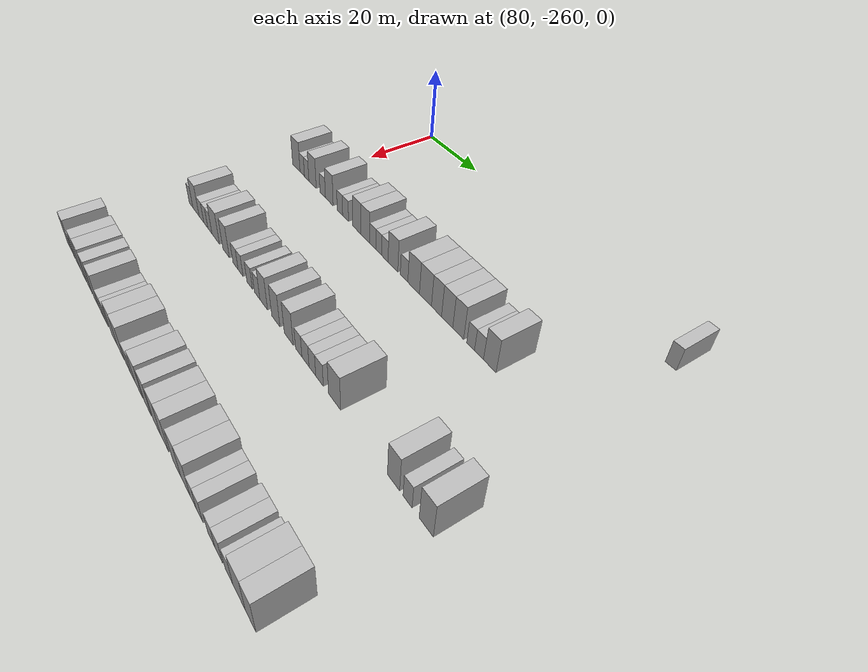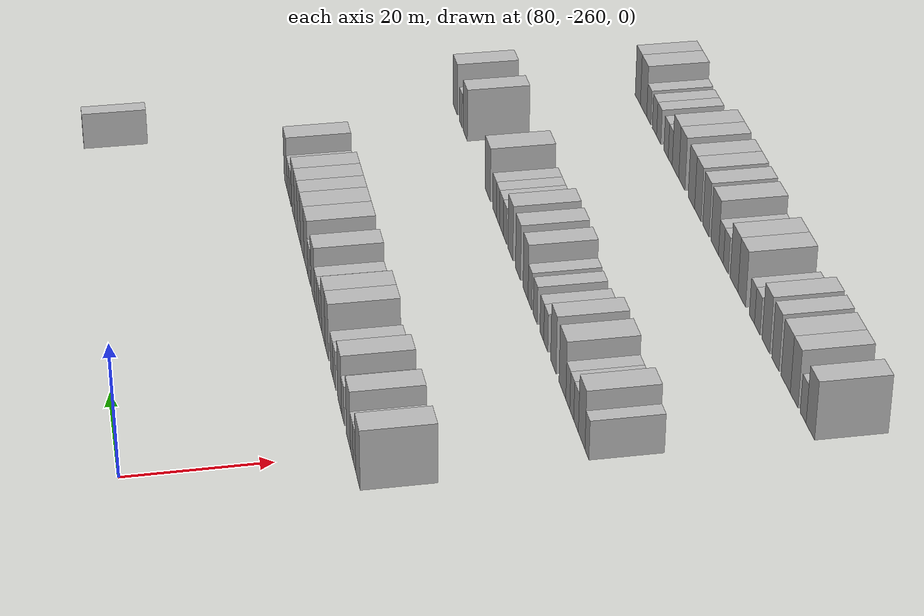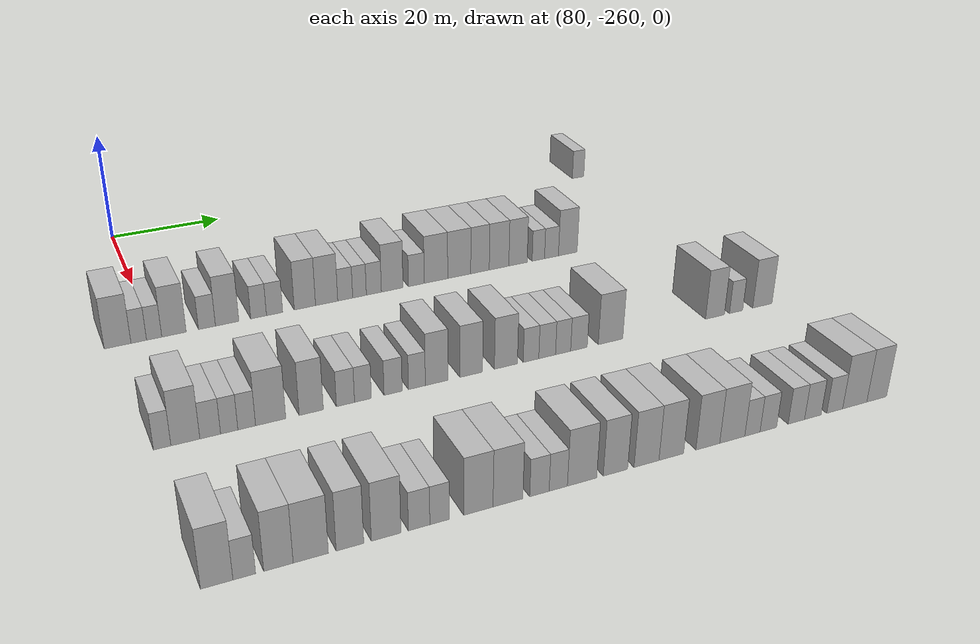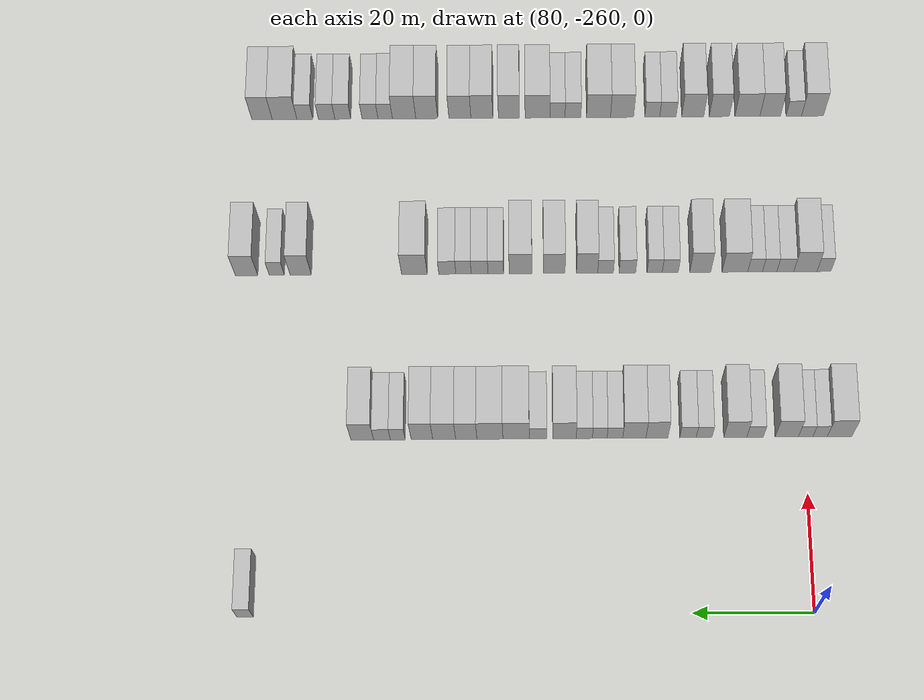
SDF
<sdf version="1.6">
 <world name="default">
  <model name="building_528">
   <static>1</static>
   <pose>85.0000 -166.7647 0 0.000000 0.000000 0.000000</pose>
   <link name="link">
    <pose>0 0 3.00 0 0 0</pose>
    <collision name="collision"><geometry><box><size>10.0000 2.6875 6.0000</size></box></geometry></collision>
    <visual name="visual">
     <cast_shadows>0</cast_shadows>
     <geometry><box><size>10.0000 2.6875 6.0000</size></box></geometry>
     <material>
      <script>
       <uri>model://HANNAS_wall/materials/scripts</uri>
       <uri>model://HANNAS_wall/materials/textures</uri>
       <name>vrc/HANNAS_wall</name>
      </script>
     </material>
    </visual>
   </link>
  </model>
  <model name="building_724">
   <static>1</static>
   <pose>115.0000 -265.9324 0 0.000000 0.000000 0.000000</pose>
   <link name="link">
    <pose>0 0 4.50 0 0 0</pose>
    <collision name="collision"><geometry><box><size>10.0000 4.1883 9.0000</size></box></geometry></collision>
    <visual name="visual">
     <cast_shadows>0</cast_shadows>
     <geometry><box><size>10.0000 4.1883 9.0000</size></box></geometry>
     <material>
      <script>
       <uri>model://HANNAS_wall/materials/scripts</uri>
       <uri>model://HANNAS_wall/materials/textures</uri>
       <name>vrc/HANNAS_wall</name>
      </script>
     </material>
    </visual>
   </link>
  </model>
  <model name="building_725">
   <static>1</static>
   <pose>115.0000 -262.6102 0 0.000000 0.000000 0.000000</pose>
   <link name="link">
    <pose>0 0 3.00 0 0 0</pose>
    <collision name="collision"><geometry><box><size>10.0000 2.4560 6.0000</size></box></geometry></collision>
    <visual name="visual">
     <cast_shadows>0</cast_shadows>
     <geometry><box><size>10.0000 2.4560 6.0000</size></box></geometry>
     <material>
      <script>
       <uri>model://HANNAS_wall/materials/scripts</uri>
       <uri>model://HANNAS_wall/materials/textures</uri>
       <name>vrc/HANNAS_wall</name>
      </script>
     </material>
    </visual>
   </link>
  </model>
  <model name="building_726">
   <static>1</static>
   <pose>115.0000 -260.1638 0 0.000000 0.000000 0.000000</pose>
   <link name="link">
    <pose>0 0 3.00 0 0 0</pose>
    <collision name="collision"><geometry><box><size>10.0000 2.4369 6.0000</size></box></geometry></collision>
    <visual name="visual">
     <cast_shadows>0</cast_shadows>
     <geometry><box><size>10.0000 2.4369 6.0000</size></box></geometry>
     <material>
      <script>
       <uri>model://HANNAS_wall/materials/scripts</uri>
       <uri>model://HANNAS_wall/materials/textures</uri>
       <name>vrc/HANNAS_wall</name>
      </script>
     </material>
    </visual>
   </link>
  </model>
  <model name="building_727">
   <static>1</static>
   <pose>115.0000 -256.9767 0 0.000000 0.000000 0.000000</pose>
   <link name="link">
    <pose>0 0 4.50 0 0 0</pose>
    <collision name="collision"><geometry><box><size>10.0000 3.9372 9.0000</size></box></geometry></collision>
    <visual name="visual">
     <cast_shadows>0</cast_shadows>
     <geometry><box><size>10.0000 3.9372 9.0000</size></box></geometry>
     <material>
      <script>
       <uri>model://HANNAS_wall/materials/scripts</uri>
       <uri>model://HANNAS_wall/materials/textures</uri>
       <name>vrc/HANNAS_wall</name>
      </script>
     </material>
    </visual>
   </link>
  </model>
  <model name="building_728">
   <static>1</static>
   <pose>115.0000 -251.6101 0 0.000000 0.000000 0.000000</pose>
   <link name="link">
    <pose>0 0 3.00 0 0 0</pose>
    <collision name="collision"><geometry><box><size>10.0000 2.7960 6.0000</size></box></geometry></collision>
    <visual name="visual">
     <cast_shadows>0</cast_shadows>
     <geometry><box><size>10.0000 2.7960 6.0000</size></box></geometry>
     <material>
      <script>
       <uri>model://HANNAS_wall/materials/scripts</uri>
       <uri>model://HANNAS_wall/materials/textures</uri>
       <name>vrc/HANNAS_wall</name>
      </script>
     </material>
    </visual>
   </link>
  </model>
  <model name="building_729">
   <static>1</static>
   <pose>115.0000 -248.2658 0 0.000000 0.000000 0.000000</pose>
   <link name="link">
    <pose>0 0 4.50 0 0 0</pose>
    <collision name="collision"><geometry><box><size>10.0000 3.8927 9.0000</size></box></geometry></collision>
    <visual name="visual">
     <cast_shadows>0</cast_shadows>
     <geometry><box><size>10.0000 3.8927 9.0000</size></box></geometry>
     <material>
      <script>
       <uri>model://HANNAS_wall/materials/scripts</uri>
       <uri>model://HANNAS_wall/materials/textures</uri>
       <name>vrc/HANNAS_wall</name>
      </script>
     </material>
    </visual>
   </link>
  </model>
  <model name="building_730">
   <static>1</static>
   <pose>115.0000 -242.9862 0 0.000000 0.000000 0.000000</pose>
   <link name="link">
    <pose>0 0 3.00 0 0 0</pose>
    <collision name="collision"><geometry><box><size>10.0000 2.6665 6.0000</size></box></geometry></collision>
    <visual name="visual">
     <cast_shadows>0</cast_shadows>
     <geometry><box><size>10.0000 2.6665 6.0000</size></box></geometry>
     <material>
      <script>
       <uri>model://HANNAS_wall/materials/scripts</uri>
       <uri>model://HANNAS_wall/materials/textures</uri>
       <name>vrc/HANNAS_wall</name>
      </script>
     </material>
    </visual>
   </link>
  </model>
  <model name="building_731">
   <static>1</static>
   <pose>115.0000 -240.2621 0 0.000000 0.000000 0.000000</pose>
   <link name="link">
    <pose>0 0 3.00 0 0 0</pose>
    <collision name="collision"><geometry><box><size>10.0000 2.7818 6.0000</size></box></geometry></collision>
    <visual name="visual">
     <cast_shadows>0</cast_shadows>
     <geometry><box><size>10.0000 2.7818 6.0000</size></box></geometry>
     <material>
      <script>
       <uri>model://HANNAS_wall/materials/scripts</uri>
       <uri>model://HANNAS_wall/materials/textures</uri>
       <name>vrc/HANNAS_wall</name>
      </script>
     </material>
    </visual>
   </link>
  </model>
  <model name="building_732">
   <static>1</static>
   <pose>115.0000 -235.0175 0 0.000000 0.000000 0.000000</pose>
   <link name="link">
    <pose>0 0 4.50 0 0 0</pose>
    <collision name="collision"><geometry><box><size>10.0000 3.7075 9.0000</size></box></geometry></collision>
    <visual name="visual">
     <cast_shadows>0</cast_shadows>
     <geometry><box><size>10.0000 3.7075 9.0000</size></box></geometry>
     <material>
      <script>
       <uri>model://HANNAS_wall/materials/scripts</uri>
       <uri>model://HANNAS_wall/materials/textures</uri>
       <name>vrc/HANNAS_wall</name>
      </script>
     </material>
    </visual>
   </link>
  </model>
  <model name="building_733">
   <static>1</static>
   <pose>115.0000 -231.2043 0 0.000000 0.000000 0.000000</pose>
   <link name="link">
    <pose>0 0 4.50 0 0 0</pose>
    <collision name="collision"><geometry><box><size>10.0000 3.9188 9.0000</size></box></geometry></collision>
    <visual name="visual">
     <cast_shadows>0</cast_shadows>
     <geometry><box><size>10.0000 3.9188 9.0000</size></box></geometry>
     <material>
      <script>
       <uri>model://HANNAS_wall/materials/scripts</uri>
       <uri>model://HANNAS_wall/materials/textures</uri>
       <name>vrc/HANNAS_wall</name>
      </script>
     </material>
    </visual>
   </link>
  </model>
  <model name="building_734">
   <static>1</static>
   <pose>115.0000 -227.9117 0 0.000000 0.000000 0.000000</pose>
   <link name="link">
    <pose>0 0 3.00 0 0 0</pose>
    <collision name="collision"><geometry><box><size>10.0000 2.6663 6.0000</size></box></geometry></collision>
    <visual name="visual">
     <cast_shadows>0</cast_shadows>
     <geometry><box><size>10.0000 2.6663 6.0000</size></box></geometry>
     <material>
      <script>
       <uri>model://HANNAS_wall/materials/scripts</uri>
       <uri>model://HANNAS_wall/materials/textures</uri>
       <name>vrc/HANNAS_wall</name>
      </script>
     </material>
    </visual>
   </link>
  </model>
  <model name="building_735">
   <static>1</static>
   <pose>115.0000 -225.3449 0 0.000000 0.000000 0.000000</pose>
   <link name="link">
    <pose>0 0 3.00 0 0 0</pose>
    <collision name="collision"><geometry><box><size>10.0000 2.4672 6.0000</size></box></geometry></collision>
    <visual name="visual">
     <cast_shadows>0</cast_shadows>
     <geometry><box><size>10.0000 2.4672 6.0000</size></box></geometry>
     <material>
      <script>
       <uri>model://HANNAS_wall/materials/scripts</uri>
       <uri>model://HANNAS_wall/materials/textures</uri>
       <name>vrc/HANNAS_wall</name>
      </script>
     </material>
    </visual>
   </link>
  </model>
  <model name="building_736">
   <static>1</static>
   <pose>115.0000 -222.7430 0 0.000000 0.000000 0.000000</pose>
   <link name="link">
    <pose>0 0 3.00 0 0 0</pose>
    <collision name="collision"><geometry><box><size>10.0000 2.7367 6.0000</size></box></geometry></collision>
    <visual name="visual">
     <cast_shadows>0</cast_shadows>
     <geometry><box><size>10.0000 2.7367 6.0000</size></box></geometry>
     <material>
      <script>
       <uri>model://HANNAS_wall/materials/scripts</uri>
       <uri>model://HANNAS_wall/materials/textures</uri>
       <name>vrc/HANNAS_wall</name>
      </script>
     </material>
    </visual>
   </link>
  </model>
  <model name="building_737">
   <static>1</static>
   <pose>115.0000 -219.3869 0 0.000000 0.000000 0.000000</pose>
   <link name="link">
    <pose>0 0 4.50 0 0 0</pose>
    <collision name="collision"><geometry><box><size>10.0000 3.9753 9.0000</size></box></geometry></collision>
    <visual name="visual">
     <cast_shadows>0</cast_shadows>
     <geometry><box><size>10.0000 3.9753 9.0000</size></box></geometry>
     <material>
      <script>
       <uri>model://HANNAS_wall/materials/scripts</uri>
       <uri>model://HANNAS_wall/materials/textures</uri>
       <name>vrc/HANNAS_wall</name>
      </script>
     </material>
    </visual>
   </link>
  </model>
  <model name="building_738">
   <static>1</static>
   <pose>115.0000 -214.9243 0 0.000000 0.000000 0.000000</pose>
   <link name="link">
    <pose>0 0 3.00 0 0 0</pose>
    <collision name="collision"><geometry><box><size>10.0000 2.9499 6.0000</size></box></geometry></collision>
    <visual name="visual">
     <cast_shadows>0</cast_shadows>
     <geometry><box><size>10.0000 2.9499 6.0000</size></box></geometry>
     <material>
      <script>
       <uri>model://HANNAS_wall/materials/scripts</uri>
       <uri>model://HANNAS_wall/materials/textures</uri>
       <name>vrc/HANNAS_wall</name>
      </script>
     </material>
    </visual>
   </link>
  </model>
  <model name="building_739">
   <static>1</static>
   <pose>115.0000 -211.2343 0 0.000000 0.000000 0.000000</pose>
   <link name="link">
    <pose>0 0 4.50 0 0 0</pose>
    <collision name="collision"><geometry><box><size>10.0000 4.4302 9.0000</size></box></geometry></collision>
    <visual name="visual">
     <cast_shadows>0</cast_shadows>
     <geometry><box><size>10.0000 4.4302 9.0000</size></box></geometry>
     <material>
      <script>
       <uri>model://HANNAS_wall/materials/scripts</uri>
       <uri>model://HANNAS_wall/materials/textures</uri>
       <name>vrc/HANNAS_wall</name>
      </script>
     </material>
    </visual>
   </link>
  </model>
  <model name="building_740">
   <static>1</static>
   <pose>115.0000 -206.8130 0 0.000000 0.000000 0.000000</pose>
   <link name="link">
    <pose>0 0 4.50 0 0 0</pose>
    <collision name="collision"><geometry><box><size>10.0000 4.4124 9.0000</size></box></geometry></collision>
    <visual name="visual">
     <cast_shadows>0</cast_shadows>
     <geometry><box><size>10.0000 4.4124 9.0000</size></box></geometry>
     <material>
      <script>
       <uri>model://HANNAS_wall/materials/scripts</uri>
       <uri>model://HANNAS_wall/materials/textures</uri>
       <name>vrc/HANNAS_wall</name>
      </script>
     </material>
    </visual>
   </link>
  </model>
  <model name="building_741">
   <static>1</static>
   <pose>115.0000 -202.8065 0 0.000000 0.000000 0.000000</pose>
   <link name="link">
    <pose>0 0 4.50 0 0 0</pose>
    <collision name="collision"><geometry><box><size>10.0000 3.6007 9.0000</size></box></geometry></collision>
    <visual name="visual">
     <cast_shadows>0</cast_shadows>
     <geometry><box><size>10.0000 3.6007 9.0000</size></box></geometry>
     <material>
      <script>
       <uri>model://HANNAS_wall/materials/scripts</uri>
       <uri>model://HANNAS_wall/materials/textures</uri>
       <name>vrc/HANNAS_wall</name>
      </script>
     </material>
    </visual>
   </link>
  </model>
  <model name="building_742">
   <static>1</static>
   <pose>115.0000 -199.0777 0 0.000000 0.000000 0.000000</pose>
   <link name="link">
    <pose>0 0 4.50 0 0 0</pose>
    <collision name="collision"><geometry><box><size>10.0000 3.8569 9.0000</size></box></geometry></collision>
    <visual name="visual">
     <cast_shadows>0</cast_shadows>
     <geometry><box><size>10.0000 3.8569 9.0000</size></box></geometry>
     <material>
      <script>
       <uri>model://HANNAS_wall/materials/scripts</uri>
       <uri>model://HANNAS_wall/materials/textures</uri>
       <name>vrc/HANNAS_wall</name>
      </script>
     </material>
    </visual>
   </link>
  </model>
  <model name="building_743">
   <static>1</static>
   <pose>115.0000 -195.3265 0 0.000000 0.000000 0.000000</pose>
   <link name="link">
    <pose>0 0 4.50 0 0 0</pose>
    <collision name="collision"><geometry><box><size>10.0000 3.6454 9.0000</size></box></geometry></collision>
    <visual name="visual">
     <cast_shadows>0</cast_shadows>
     <geometry><box><size>10.0000 3.6454 9.0000</size></box></geometry>
     <material>
      <script>
       <uri>model://HANNAS_wall/materials/scripts</uri>
       <uri>model://HANNAS_wall/materials/textures</uri>
       <name>vrc/HANNAS_wall</name>
      </script>
     </material>
    </visual>
   </link>
  </model>
  <model name="building_744">
   <static>1</static>
   <pose>115.0000 -191.2518 0 0.000000 0.000000 0.000000</pose>
   <link name="link">
    <pose>0 0 3.00 0 0 0</pose>
    <collision name="collision"><geometry><box><size>10.0000 2.5040 6.0000</size></box></geometry></collision>
    <visual name="visual">
     <cast_shadows>0</cast_shadows>
     <geometry><box><size>10.0000 2.5040 6.0000</size></box></geometry>
     <material>
      <script>
       <uri>model://HANNAS_wall/materials/scripts</uri>
       <uri>model://HANNAS_wall/materials/textures</uri>
       <name>vrc/HANNAS_wall</name>
      </script>
     </material>
    </visual>
   </link>
  </model>
  <model name="building_745">
   <static>1</static>
   <pose>115.0000 -188.5878 0 0.000000 0.000000 0.000000</pose>
   <link name="link">
    <pose>0 0 3.00 0 0 0</pose>
    <collision name="collision"><geometry><box><size>10.0000 2.8239 6.0000</size></box></geometry></collision>
    <visual name="visual">
     <cast_shadows>0</cast_shadows>
     <geometry><box><size>10.0000 2.8239 6.0000</size></box></geometry>
     <material>
      <script>
       <uri>model://HANNAS_wall/materials/scripts</uri>
       <uri>model://HANNAS_wall/materials/textures</uri>
       <name>vrc/HANNAS_wall</name>
      </script>
     </material>
    </visual>
   </link>
  </model>
  <model name="building_746">
   <static>1</static>
   <pose>115.0000 -185.2563 0 0.000000 0.000000 0.000000</pose>
   <link name="link">
    <pose>0 0 4.50 0 0 0</pose>
    <collision name="collision"><geometry><box><size>10.0000 3.8390 9.0000</size></box></geometry></collision>
    <visual name="visual">
     <cast_shadows>0</cast_shadows>
     <geometry><box><size>10.0000 3.8390 9.0000</size></box></geometry>
     <material>
      <script>
       <uri>model://HANNAS_wall/materials/scripts</uri>
       <uri>model://HANNAS_wall/materials/textures</uri>
       <name>vrc/HANNAS_wall</name>
      </script>
     </material>
    </visual>
   </link>
  </model>
  <model name="building_947">
   <static>1</static>
   <pose>145.0000 -265.0138 0 0.000000 0.000000 0.000000</pose>
   <link name="link">
    <pose>0 0 3.00 0 0 0</pose>
    <collision name="collision"><geometry><box><size>10.0000 2.4333 6.0000</size></box></geometry></collision>
    <visual name="visual">
     <cast_shadows>0</cast_shadows>
     <geometry><box><size>10.0000 2.4333 6.0000</size></box></geometry>
     <material>
      <script>
       <uri>model://HANNAS_wall/materials/scripts</uri>
       <uri>model://HANNAS_wall/materials/textures</uri>
       <name>vrc/HANNAS_wall</name>
      </script>
     </material>
    </visual>
   </link>
  </model>
  <model name="building_948">
   <static>1</static>
   <pose>145.0000 -261.7648 0 0.000000 0.000000 0.000000</pose>
   <link name="link">
    <pose>0 0 4.50 0 0 0</pose>
    <collision name="collision"><geometry><box><size>10.0000 4.0647 9.0000</size></box></geometry></collision>
    <visual name="visual">
     <cast_shadows>0</cast_shadows>
     <geometry><box><size>10.0000 4.0647 9.0000</size></box></geometry>
     <material>
      <script>
       <uri>model://HANNAS_wall/materials/scripts</uri>
       <uri>model://HANNAS_wall/materials/textures</uri>
       <name>vrc/HANNAS_wall</name>
      </script>
     </material>
    </visual>
   </link>
  </model>
  <model name="building_949">
   <static>1</static>
   <pose>145.0000 -258.2551 0 0.000000 0.000000 0.000000</pose>
   <link name="link">
    <pose>0 0 3.00 0 0 0</pose>
    <collision name="collision"><geometry><box><size>10.0000 2.9548 6.0000</size></box></geometry></collision>
    <visual name="visual">
     <cast_shadows>0</cast_shadows>
     <geometry><box><size>10.0000 2.9548 6.0000</size></box></geometry>
     <material>
      <script>
       <uri>model://HANNAS_wall/materials/scripts</uri>
       <uri>model://HANNAS_wall/materials/textures</uri>
       <name>vrc/HANNAS_wall</name>
      </script>
     </material>
    </visual>
   </link>
  </model>
  <model name="building_950">
   <static>1</static>
   <pose>145.0000 -255.5319 0 0.000000 0.000000 0.000000</pose>
   <link name="link">
    <pose>0 0 3.00 0 0 0</pose>
    <collision name="collision"><geometry><box><size>10.0000 2.4915 6.0000</size></box></geometry></collision>
    <visual name="visual">
     <cast_shadows>0</cast_shadows>
     <geometry><box><size>10.0000 2.4915 6.0000</size></box></geometry>
     <material>
      <script>
       <uri>model://HANNAS_wall/materials/scripts</uri>
       <uri>model://HANNAS_wall/materials/textures</uri>
       <name>vrc/HANNAS_wall</name>
      </script>
     </material>
    </visual>
   </link>
  </model>
  <model name="building_951">
   <static>1</static>
   <pose>145.0000 -252.9989 0 0.000000 0.000000 0.000000</pose>
   <link name="link">
    <pose>0 0 3.00 0 0 0</pose>
    <collision name="collision"><geometry><box><size>10.0000 2.5747 6.0000</size></box></geometry></collision>
    <visual name="visual">
     <cast_shadows>0</cast_shadows>
     <geometry><box><size>10.0000 2.5747 6.0000</size></box></geometry>
     <material>
      <script>
       <uri>model://HANNAS_wall/materials/scripts</uri>
       <uri>model://HANNAS_wall/materials/textures</uri>
       <name>vrc/HANNAS_wall</name>
      </script>
     </material>
    </visual>
   </link>
  </model>
  <model name="building_952">
   <static>1</static>
   <pose>145.0000 -249.4823 0 0.000000 0.000000 0.000000</pose>
   <link name="link">
    <pose>0 0 4.50 0 0 0</pose>
    <collision name="collision"><geometry><box><size>10.0000 4.4585 9.0000</size></box></geometry></collision>
    <visual name="visual">
     <cast_shadows>0</cast_shadows>
     <geometry><box><size>10.0000 4.4585 9.0000</size></box></geometry>
     <material>
      <script>
       <uri>model://HANNAS_wall/materials/scripts</uri>
       <uri>model://HANNAS_wall/materials/textures</uri>
       <name>vrc/HANNAS_wall</name>
      </script>
     </material>
    </visual>
   </link>
  </model>
  <model name="building_953">
   <static>1</static>
   <pose>145.0000 -243.4203 0 0.000000 0.000000 0.000000</pose>
   <link name="link">
    <pose>0 0 4.50 0 0 0</pose>
    <collision name="collision"><geometry><box><size>10.0000 3.6656 9.0000</size></box></geometry></collision>
    <visual name="visual">
     <cast_shadows>0</cast_shadows>
     <geometry><box><size>10.0000 3.6656 9.0000</size></box></geometry>
     <material>
      <script>
       <uri>model://HANNAS_wall/materials/scripts</uri>
       <uri>model://HANNAS_wall/materials/textures</uri>
       <name>vrc/HANNAS_wall</name>
      </script>
     </material>
    </visual>
   </link>
  </model>
  <model name="building_954">
   <static>1</static>
   <pose>145.0000 -238.1877 0 0.000000 0.000000 0.000000</pose>
   <link name="link">
    <pose>0 0 3.00 0 0 0</pose>
    <collision name="collision"><geometry><box><size>10.0000 2.7996 6.0000</size></box></geometry></collision>
    <visual name="visual">
     <cast_shadows>0</cast_shadows>
     <geometry><box><size>10.0000 2.7996 6.0000</size></box></geometry>
     <material>
      <script>
       <uri>model://HANNAS_wall/materials/scripts</uri>
       <uri>model://HANNAS_wall/materials/textures</uri>
       <name>vrc/HANNAS_wall</name>
      </script>
     </material>
    </visual>
   </link>
  </model>
  <model name="building_955">
   <static>1</static>
   <pose>145.0000 -235.4723 0 0.000000 0.000000 0.000000</pose>
   <link name="link">
    <pose>0 0 3.00 0 0 0</pose>
    <collision name="collision"><geometry><box><size>10.0000 2.6311 6.0000</size></box></geometry></collision>
    <visual name="visual">
     <cast_shadows>0</cast_shadows>
     <geometry><box><size>10.0000 2.6311 6.0000</size></box></geometry>
     <material>
      <script>
       <uri>model://HANNAS_wall/materials/scripts</uri>
       <uri>model://HANNAS_wall/materials/textures</uri>
       <name>vrc/HANNAS_wall</name>
      </script>
     </material>
    </visual>
   </link>
  </model>
  <model name="building_956">
   <static>1</static>
   <pose>145.0000 -230.7157 0 0.000000 0.000000 0.000000</pose>
   <link name="link">
    <pose>0 0 3.00 0 0 0</pose>
    <collision name="collision"><geometry><box><size>10.0000 2.8822 6.0000</size></box></geometry></collision>
    <visual name="visual">
     <cast_shadows>0</cast_shadows>
     <geometry><box><size>10.0000 2.8822 6.0000</size></box></geometry>
     <material>
      <script>
       <uri>model://HANNAS_wall/materials/scripts</uri>
       <uri>model://HANNAS_wall/materials/textures</uri>
       <name>vrc/HANNAS_wall</name>
      </script>
     </material>
    </visual>
   </link>
  </model>
  <model name="building_957">
   <static>1</static>
   <pose>145.0000 -226.9113 0 0.000000 0.000000 0.000000</pose>
   <link name="link">
    <pose>0 0 3.00 0 0 0</pose>
    <collision name="collision"><geometry><box><size>10.0000 2.7265 6.0000</size></box></geometry></collision>
    <visual name="visual">
     <cast_shadows>0</cast_shadows>
     <geometry><box><size>10.0000 2.7265 6.0000</size></box></geometry>
     <material>
      <script>
       <uri>model://HANNAS_wall/materials/scripts</uri>
       <uri>model://HANNAS_wall/materials/textures</uri>
       <name>vrc/HANNAS_wall</name>
      </script>
     </material>
    </visual>
   </link>
  </model>
  <model name="building_958">
   <static>1</static>
   <pose>145.0000 -223.7003 0 0.000000 0.000000 0.000000</pose>
   <link name="link">
    <pose>0 0 4.50 0 0 0</pose>
    <collision name="collision"><geometry><box><size>10.0000 3.6956 9.0000</size></box></geometry></collision>
    <visual name="visual">
     <cast_shadows>0</cast_shadows>
     <geometry><box><size>10.0000 3.6956 9.0000</size></box></geometry>
     <material>
      <script>
       <uri>model://HANNAS_wall/materials/scripts</uri>
       <uri>model://HANNAS_wall/materials/textures</uri>
       <name>vrc/HANNAS_wall</name>
      </script>
     </material>
    </visual>
   </link>
  </model>
  <model name="building_959">
   <static>1</static>
   <pose>145.0000 -217.9725 0 0.000000 0.000000 0.000000</pose>
   <link name="link">
    <pose>0 0 4.50 0 0 0</pose>
    <collision name="collision"><geometry><box><size>10.0000 3.7600 9.0000</size></box></geometry></collision>
    <visual name="visual">
     <cast_shadows>0</cast_shadows>
     <geometry><box><size>10.0000 3.7600 9.0000</size></box></geometry>
     <material>
      <script>
       <uri>model://HANNAS_wall/materials/scripts</uri>
       <uri>model://HANNAS_wall/materials/textures</uri>
       <name>vrc/HANNAS_wall</name>
      </script>
     </material>
    </visual>
   </link>
  </model>
  <model name="building_960">
   <static>1</static>
   <pose>145.0000 -212.1271 0 0.000000 0.000000 0.000000</pose>
   <link name="link">
    <pose>0 0 4.50 0 0 0</pose>
    <collision name="collision"><geometry><box><size>10.0000 3.9308 9.0000</size></box></geometry></collision>
    <visual name="visual">
     <cast_shadows>0</cast_shadows>
     <geometry><box><size>10.0000 3.9308 9.0000</size></box></geometry>
     <material>
      <script>
       <uri>model://HANNAS_wall/materials/scripts</uri>
       <uri>model://HANNAS_wall/materials/textures</uri>
       <name>vrc/HANNAS_wall</name>
      </script>
     </material>
    </visual>
   </link>
  </model>
  <model name="building_961">
   <static>1</static>
   <pose>145.0000 -207.8095 0 0.000000 0.000000 0.000000</pose>
   <link name="link">
    <pose>0 0 3.00 0 0 0</pose>
    <collision name="collision"><geometry><box><size>10.0000 2.7043 6.0000</size></box></geometry></collision>
    <visual name="visual">
     <cast_shadows>0</cast_shadows>
     <geometry><box><size>10.0000 2.7043 6.0000</size></box></geometry>
     <material>
      <script>
       <uri>model://HANNAS_wall/materials/scripts</uri>
       <uri>model://HANNAS_wall/materials/textures</uri>
       <name>vrc/HANNAS_wall</name>
      </script>
     </material>
    </visual>
   </link>
  </model>
  <model name="building_962">
   <static>1</static>
   <pose>145.0000 -204.9913 0 0.000000 0.000000 0.000000</pose>
   <link name="link">
    <pose>0 0 3.00 0 0 0</pose>
    <collision name="collision"><geometry><box><size>10.0000 2.9323 6.0000</size></box></geometry></collision>
    <visual name="visual">
     <cast_shadows>0</cast_shadows>
     <geometry><box><size>10.0000 2.9323 6.0000</size></box></geometry>
     <material>
      <script>
       <uri>model://HANNAS_wall/materials/scripts</uri>
       <uri>model://HANNAS_wall/materials/textures</uri>
       <name>vrc/HANNAS_wall</name>
      </script>
     </material>
    </visual>
   </link>
  </model>
  <model name="building_963">
   <static>1</static>
   <pose>145.0000 -202.1834 0 0.000000 0.000000 0.000000</pose>
   <link name="link">
    <pose>0 0 3.00 0 0 0</pose>
    <collision name="collision"><geometry><box><size>10.0000 2.6835 6.0000</size></box></geometry></collision>
    <visual name="visual">
     <cast_shadows>0</cast_shadows>
     <geometry><box><size>10.0000 2.6835 6.0000</size></box></geometry>
     <material>
      <script>
       <uri>model://HANNAS_wall/materials/scripts</uri>
       <uri>model://HANNAS_wall/materials/textures</uri>
       <name>vrc/HANNAS_wall</name>
      </script>
     </material>
    </visual>
   </link>
  </model>
  <model name="building_964">
   <static>1</static>
   <pose>145.0000 -199.3575 0 0.000000 0.000000 0.000000</pose>
   <link name="link">
    <pose>0 0 3.00 0 0 0</pose>
    <collision name="collision"><geometry><box><size>10.0000 2.9682 6.0000</size></box></geometry></collision>
    <visual name="visual">
     <cast_shadows>0</cast_shadows>
     <geometry><box><size>10.0000 2.9682 6.0000</size></box></geometry>
     <material>
      <script>
       <uri>model://HANNAS_wall/materials/scripts</uri>
       <uri>model://HANNAS_wall/materials/textures</uri>
       <name>vrc/HANNAS_wall</name>
      </script>
     </material>
    </visual>
   </link>
  </model>
  <model name="building_965">
   <static>1</static>
   <pose>145.0000 -193.6341 0 0.000000 0.000000 0.000000</pose>
   <link name="link">
    <pose>0 0 4.50 0 0 0</pose>
    <collision name="collision"><geometry><box><size>10.0000 4.4787 9.0000</size></box></geometry></collision>
    <visual name="visual">
     <cast_shadows>0</cast_shadows>
     <geometry><box><size>10.0000 4.4787 9.0000</size></box></geometry>
     <material>
      <script>
       <uri>model://HANNAS_wall/materials/scripts</uri>
       <uri>model://HANNAS_wall/materials/textures</uri>
       <name>vrc/HANNAS_wall</name>
      </script>
     </material>
    </visual>
   </link>
  </model>
  <model name="building_966">
   <static>1</static>
   <pose>145.0000 -173.8406 0 0.000000 0.000000 0.000000</pose>
   <link name="link">
    <pose>0 0 4.50 0 0 0</pose>
    <collision name="collision"><geometry><box><size>10.0000 3.7028 9.0000</size></box></geometry></collision>
    <visual name="visual">
     <cast_shadows>0</cast_shadows>
     <geometry><box><size>10.0000 3.7028 9.0000</size></box></geometry>
     <material>
      <script>
       <uri>model://HANNAS_wall/materials/scripts</uri>
       <uri>model://HANNAS_wall/materials/textures</uri>
       <name>vrc/HANNAS_wall</name>
      </script>
     </material>
    </visual>
   </link>
  </model>
  <model name="building_967">
   <static>1</static>
   <pose>145.0000 -169.6714 0 0.000000 0.000000 0.000000</pose>
   <link name="link">
    <pose>0 0 3.00 0 0 0</pose>
    <collision name="collision"><geometry><box><size>10.0000 2.6356 6.0000</size></box></geometry></collision>
    <visual name="visual">
     <cast_shadows>0</cast_shadows>
     <geometry><box><size>10.0000 2.6356 6.0000</size></box></geometry>
     <material>
      <script>
       <uri>model://HANNAS_wall/materials/scripts</uri>
       <uri>model://HANNAS_wall/materials/textures</uri>
       <name>vrc/HANNAS_wall</name>
      </script>
     </material>
    </visual>
   </link>
  </model>
  <model name="building_968">
   <static>1</static>
   <pose>145.0000 -164.4012 0 0.000000 0.000000 0.000000</pose>
   <link name="link">
    <pose>0 0 4.50 0 0 0</pose>
    <collision name="collision"><geometry><box><size>10.0000 3.9048 9.0000</size></box></geometry></collision>
    <visual name="visual">
     <cast_shadows>0</cast_shadows>
     <geometry><box><size>10.0000 3.9048 9.0000</size></box></geometry>
     <material>
      <script>
       <uri>model://HANNAS_wall/materials/scripts</uri>
       <uri>model://HANNAS_wall/materials/textures</uri>
       <name>vrc/HANNAS_wall</name>
      </script>
     </material>
    </visual>
   </link>
  </model>
  <model name="building_1173">
   <static>1</static>
   <pose>175.0000 -264.6680 0 0.000000 0.000000 0.000000</pose>
   <link name="link">
    <pose>0 0 4.50 0 0 0</pose>
    <collision name="collision"><geometry><box><size>10.0000 3.9331 9.0000</size></box></geometry></collision>
    <visual name="visual">
     <cast_shadows>0</cast_shadows>
     <geometry><box><size>10.0000 3.9331 9.0000</size></box></geometry>
     <material>
      <script>
       <uri>model://HANNAS_wall/materials/scripts</uri>
       <uri>model://HANNAS_wall/materials/textures</uri>
       <name>vrc/HANNAS_wall</name>
      </script>
     </material>
    </visual>
   </link>
  </model>
  <model name="building_1174">
   <static>1</static>
   <pose>175.0000 -261.3104 0 0.000000 0.000000 0.000000</pose>
   <link name="link">
    <pose>0 0 3.00 0 0 0</pose>
    <collision name="collision"><geometry><box><size>10.0000 2.7820 6.0000</size></box></geometry></collision>
    <visual name="visual">
     <cast_shadows>0</cast_shadows>
     <geometry><box><size>10.0000 2.7820 6.0000</size></box></geometry>
     <material>
      <script>
       <uri>model://HANNAS_wall/materials/scripts</uri>
       <uri>model://HANNAS_wall/materials/textures</uri>
       <name>vrc/HANNAS_wall</name>
      </script>
     </material>
    </visual>
   </link>
  </model>
  <model name="building_1175">
   <static>1</static>
   <pose>175.0000 -257.0747 0 0.000000 0.000000 0.000000</pose>
   <link name="link">
    <pose>0 0 4.50 0 0 0</pose>
    <collision name="collision"><geometry><box><size>10.0000 3.6896 9.0000</size></box></geometry></collision>
    <visual name="visual">
     <cast_shadows>0</cast_shadows>
     <geometry><box><size>10.0000 3.6896 9.0000</size></box></geometry>
     <material>
      <script>
       <uri>model://HANNAS_wall/materials/scripts</uri>
       <uri>model://HANNAS_wall/materials/textures</uri>
       <name>vrc/HANNAS_wall</name>
      </script>
     </material>
    </visual>
   </link>
  </model>
  <model name="building_1176">
   <static>1</static>
   <pose>175.0000 -252.9828 0 0.000000 0.000000 0.000000</pose>
   <link name="link">
    <pose>0 0 4.50 0 0 0</pose>
    <collision name="collision"><geometry><box><size>10.0000 4.4942 9.0000</size></box></geometry></collision>
    <visual name="visual">
     <cast_shadows>0</cast_shadows>
     <geometry><box><size>10.0000 4.4942 9.0000</size></box></geometry>
     <material>
      <script>
       <uri>model://HANNAS_wall/materials/scripts</uri>
       <uri>model://HANNAS_wall/materials/textures</uri>
       <name>vrc/HANNAS_wall</name>
      </script>
     </material>
    </visual>
   </link>
  </model>
  <model name="building_1177">
   <static>1</static>
   <pose>175.0000 -247.9306 0 0.000000 0.000000 0.000000</pose>
   <link name="link">
    <pose>0 0 4.50 0 0 0</pose>
    <collision name="collision"><geometry><box><size>10.0000 3.6100 9.0000</size></box></geometry></collision>
    <visual name="visual">
     <cast_shadows>0</cast_shadows>
     <geometry><box><size>10.0000 3.6100 9.0000</size></box></geometry>
     <material>
      <script>
       <uri>model://HANNAS_wall/materials/scripts</uri>
       <uri>model://HANNAS_wall/materials/textures</uri>
       <name>vrc/HANNAS_wall</name>
      </script>
     </material>
    </visual>
   </link>
  </model>
  <model name="building_1178">
   <static>1</static>
   <pose>175.0000 -243.1454 0 0.000000 0.000000 0.000000</pose>
   <link name="link">
    <pose>0 0 4.50 0 0 0</pose>
    <collision name="collision"><geometry><box><size>10.0000 3.9605 9.0000</size></box></geometry></collision>
    <visual name="visual">
     <cast_shadows>0</cast_shadows>
     <geometry><box><size>10.0000 3.9605 9.0000</size></box></geometry>
     <material>
      <script>
       <uri>model://HANNAS_wall/materials/scripts</uri>
       <uri>model://HANNAS_wall/materials/textures</uri>
       <name>vrc/HANNAS_wall</name>
      </script>
     </material>
    </visual>
   </link>
  </model>
  <model name="building_1179">
   <static>1</static>
   <pose>175.0000 -238.6990 0 0.000000 0.000000 0.000000</pose>
   <link name="link">
    <pose>0 0 3.00 0 0 0</pose>
    <collision name="collision"><geometry><box><size>10.0000 2.9322 6.0000</size></box></geometry></collision>
    <visual name="visual">
     <cast_shadows>0</cast_shadows>
     <geometry><box><size>10.0000 2.9322 6.0000</size></box></geometry>
     <material>
      <script>
       <uri>model://HANNAS_wall/materials/scripts</uri>
       <uri>model://HANNAS_wall/materials/textures</uri>
       <name>vrc/HANNAS_wall</name>
      </script>
     </material>
    </visual>
   </link>
  </model>
  <model name="building_1180">
   <static>1</static>
   <pose>175.0000 -235.8826 0 0.000000 0.000000 0.000000</pose>
   <link name="link">
    <pose>0 0 3.00 0 0 0</pose>
    <collision name="collision"><geometry><box><size>10.0000 2.7005 6.0000</size></box></geometry></collision>
    <visual name="visual">
     <cast_shadows>0</cast_shadows>
     <geometry><box><size>10.0000 2.7005 6.0000</size></box></geometry>
     <material>
      <script>
       <uri>model://HANNAS_wall/materials/scripts</uri>
       <uri>model://HANNAS_wall/materials/textures</uri>
       <name>vrc/HANNAS_wall</name>
      </script>
     </material>
    </visual>
   </link>
  </model>
  <model name="building_1181">
   <static>1</static>
   <pose>175.0000 -230.4626 0 0.000000 0.000000 0.000000</pose>
   <link name="link">
    <pose>0 0 4.50 0 0 0</pose>
    <collision name="collision"><geometry><box><size>10.0000 4.1396 9.0000</size></box></geometry></collision>
    <visual name="visual">
     <cast_shadows>0</cast_shadows>
     <geometry><box><size>10.0000 4.1396 9.0000</size></box></geometry>
     <material>
      <script>
       <uri>model://HANNAS_wall/materials/scripts</uri>
       <uri>model://HANNAS_wall/materials/textures</uri>
       <name>vrc/HANNAS_wall</name>
      </script>
     </material>
    </visual>
   </link>
  </model>
  <model name="building_1182">
   <static>1</static>
   <pose>175.0000 -226.2378 0 0.000000 0.000000 0.000000</pose>
   <link name="link">
    <pose>0 0 4.50 0 0 0</pose>
    <collision name="collision"><geometry><box><size>10.0000 4.3098 9.0000</size></box></geometry></collision>
    <visual name="visual">
     <cast_shadows>0</cast_shadows>
     <geometry><box><size>10.0000 4.3098 9.0000</size></box></geometry>
     <material>
      <script>
       <uri>model://HANNAS_wall/materials/scripts</uri>
       <uri>model://HANNAS_wall/materials/textures</uri>
       <name>vrc/HANNAS_wall</name>
      </script>
     </material>
    </visual>
   </link>
  </model>
  <model name="building_1183">
   <static>1</static>
   <pose>175.0000 -221.6536 0 0.000000 0.000000 0.000000</pose>
   <link name="link">
    <pose>0 0 3.00 0 0 0</pose>
    <collision name="collision"><geometry><box><size>10.0000 2.8587 6.0000</size></box></geometry></collision>
    <visual name="visual">
     <cast_shadows>0</cast_shadows>
     <geometry><box><size>10.0000 2.8587 6.0000</size></box></geometry>
     <material>
      <script>
       <uri>model://HANNAS_wall/materials/scripts</uri>
       <uri>model://HANNAS_wall/materials/textures</uri>
       <name>vrc/HANNAS_wall</name>
      </script>
     </material>
    </visual>
   </link>
  </model>
  <model name="building_1184">
   <static>1</static>
   <pose>175.0000 -218.8641 0 0.000000 0.000000 0.000000</pose>
   <link name="link">
    <pose>0 0 3.00 0 0 0</pose>
    <collision name="collision"><geometry><box><size>10.0000 2.7202 6.0000</size></box></geometry></collision>
    <visual name="visual">
     <cast_shadows>0</cast_shadows>
     <geometry><box><size>10.0000 2.7202 6.0000</size></box></geometry>
     <material>
      <script>
       <uri>model://HANNAS_wall/materials/scripts</uri>
       <uri>model://HANNAS_wall/materials/textures</uri>
       <name>vrc/HANNAS_wall</name>
      </script>
     </material>
    </visual>
   </link>
  </model>
  <model name="building_1185">
   <static>1</static>
   <pose>175.0000 -215.2837 0 0.000000 0.000000 0.000000</pose>
   <link name="link">
    <pose>0 0 4.50 0 0 0</pose>
    <collision name="collision"><geometry><box><size>10.0000 4.4406 9.0000</size></box></geometry></collision>
    <visual name="visual">
     <cast_shadows>0</cast_shadows>
     <geometry><box><size>10.0000 4.4406 9.0000</size></box></geometry>
     <material>
      <script>
       <uri>model://HANNAS_wall/materials/scripts</uri>
       <uri>model://HANNAS_wall/materials/textures</uri>
       <name>vrc/HANNAS_wall</name>
      </script>
     </material>
    </visual>
   </link>
  </model>
  <model name="building_1186">
   <static>1</static>
   <pose>175.0000 -210.1733 0 0.000000 0.000000 0.000000</pose>
   <link name="link">
    <pose>0 0 4.50 0 0 0</pose>
    <collision name="collision"><geometry><box><size>10.0000 3.7803 9.0000</size></box></geometry></collision>
    <visual name="visual">
     <cast_shadows>0</cast_shadows>
     <geometry><box><size>10.0000 3.7803 9.0000</size></box></geometry>
     <material>
      <script>
       <uri>model://HANNAS_wall/materials/scripts</uri>
       <uri>model://HANNAS_wall/materials/textures</uri>
       <name>vrc/HANNAS_wall</name>
      </script>
     </material>
    </visual>
   </link>
  </model>
  <model name="building_1187">
   <static>1</static>
   <pose>175.0000 -205.3090 0 0.000000 0.000000 0.000000</pose>
   <link name="link">
    <pose>0 0 4.50 0 0 0</pose>
    <collision name="collision"><geometry><box><size>10.0000 3.9483 9.0000</size></box></geometry></collision>
    <visual name="visual">
     <cast_shadows>0</cast_shadows>
     <geometry><box><size>10.0000 3.9483 9.0000</size></box></geometry>
     <material>
      <script>
       <uri>model://HANNAS_wall/materials/scripts</uri>
       <uri>model://HANNAS_wall/materials/textures</uri>
       <name>vrc/HANNAS_wall</name>
      </script>
     </material>
    </visual>
   </link>
  </model>
  <model name="building_1188">
   <static>1</static>
   <pose>175.0000 -201.3615 0 0.000000 0.000000 0.000000</pose>
   <link name="link">
    <pose>0 0 4.50 0 0 0</pose>
    <collision name="collision"><geometry><box><size>10.0000 3.9466 9.0000</size></box></geometry></collision>
    <visual name="visual">
     <cast_shadows>0</cast_shadows>
     <geometry><box><size>10.0000 3.9466 9.0000</size></box></geometry>
     <material>
      <script>
       <uri>model://HANNAS_wall/materials/scripts</uri>
       <uri>model://HANNAS_wall/materials/textures</uri>
       <name>vrc/HANNAS_wall</name>
      </script>
     </material>
    </visual>
   </link>
  </model>
  <model name="building_1189">
   <static>1</static>
   <pose>175.0000 -195.4206 0 0.000000 0.000000 0.000000</pose>
   <link name="link">
    <pose>0 0 4.50 0 0 0</pose>
    <collision name="collision"><geometry><box><size>10.0000 3.9353 9.0000</size></box></geometry></collision>
    <visual name="visual">
     <cast_shadows>0</cast_shadows>
     <geometry><box><size>10.0000 3.9353 9.0000</size></box></geometry>
     <material>
      <script>
       <uri>model://HANNAS_wall/materials/scripts</uri>
       <uri>model://HANNAS_wall/materials/textures</uri>
       <name>vrc/HANNAS_wall</name>
      </script>
     </material>
    </visual>
   </link>
  </model>
  <model name="building_1190">
   <static>1</static>
   <pose>175.0000 -191.3548 0 0.000000 0.000000 0.000000</pose>
   <link name="link">
    <pose>0 0 4.50 0 0 0</pose>
    <collision name="collision"><geometry><box><size>10.0000 4.1962 9.0000</size></box></geometry></collision>
    <visual name="visual">
     <cast_shadows>0</cast_shadows>
     <geometry><box><size>10.0000 4.1962 9.0000</size></box></geometry>
     <material>
      <script>
       <uri>model://HANNAS_wall/materials/scripts</uri>
       <uri>model://HANNAS_wall/materials/textures</uri>
       <name>vrc/HANNAS_wall</name>
      </script>
     </material>
    </visual>
   </link>
  </model>
  <model name="building_1191">
   <static>1</static>
   <pose>175.0000 -187.9617 0 0.000000 0.000000 0.000000</pose>
   <link name="link">
    <pose>0 0 3.00 0 0 0</pose>
    <collision name="collision"><geometry><box><size>10.0000 2.5900 6.0000</size></box></geometry></collision>
    <visual name="visual">
     <cast_shadows>0</cast_shadows>
     <geometry><box><size>10.0000 2.5900 6.0000</size></box></geometry>
     <material>
      <script>
       <uri>model://HANNAS_wall/materials/scripts</uri>
       <uri>model://HANNAS_wall/materials/textures</uri>
       <name>vrc/HANNAS_wall</name>
      </script>
     </material>
    </visual>
   </link>
  </model>
  <model name="building_1192">
   <static>1</static>
   <pose>175.0000 -185.2403 0 0.000000 0.000000 0.000000</pose>
   <link name="link">
    <pose>0 0 3.00 0 0 0</pose>
    <collision name="collision"><geometry><box><size>10.0000 2.8528 6.0000</size></box></geometry></collision>
    <visual name="visual">
     <cast_shadows>0</cast_shadows>
     <geometry><box><size>10.0000 2.8528 6.0000</size></box></geometry>
     <material>
      <script>
       <uri>model://HANNAS_wall/materials/scripts</uri>
       <uri>model://HANNAS_wall/materials/textures</uri>
       <name>vrc/HANNAS_wall</name>
      </script>
     </material>
    </visual>
   </link>
  </model>
  <model name="building_1193">
   <static>1</static>
   <pose>175.0000 -180.3710 0 0.000000 0.000000 0.000000</pose>
   <link name="link">
    <pose>0 0 3.00 0 0 0</pose>
    <collision name="collision"><geometry><box><size>10.0000 2.8860 6.0000</size></box></geometry></collision>
    <visual name="visual">
     <cast_shadows>0</cast_shadows>
     <geometry><box><size>10.0000 2.8860 6.0000</size></box></geometry>
     <material>
      <script>
       <uri>model://HANNAS_wall/materials/scripts</uri>
       <uri>model://HANNAS_wall/materials/textures</uri>
       <name>vrc/HANNAS_wall</name>
      </script>
     </material>
    </visual>
   </link>
  </model>
  <model name="building_1194">
   <static>1</static>
   <pose>175.0000 -177.4612 0 0.000000 0.000000 0.000000</pose>
   <link name="link">
    <pose>0 0 3.00 0 0 0</pose>
    <collision name="collision"><geometry><box><size>10.0000 2.9337 6.0000</size></box></geometry></collision>
    <visual name="visual">
     <cast_shadows>0</cast_shadows>
     <geometry><box><size>10.0000 2.9337 6.0000</size></box></geometry>
     <material>
      <script>
       <uri>model://HANNAS_wall/materials/scripts</uri>
       <uri>model://HANNAS_wall/materials/textures</uri>
       <name>vrc/HANNAS_wall</name>
      </script>
     </material>
    </visual>
   </link>
  </model>
  <model name="building_1195">
   <static>1</static>
   <pose>175.0000 -173.5635 0 0.000000 0.000000 0.000000</pose>
   <link name="link">
    <pose>0 0 3.00 0 0 0</pose>
    <collision name="collision"><geometry><box><size>10.0000 2.8616 6.0000</size></box></geometry></collision>
    <visual name="visual">
     <cast_shadows>0</cast_shadows>
     <geometry><box><size>10.0000 2.8616 6.0000</size></box></geometry>
     <material>
      <script>
       <uri>model://HANNAS_wall/materials/scripts</uri>
       <uri>model://HANNAS_wall/materials/textures</uri>
       <name>vrc/HANNAS_wall</name>
      </script>
     </material>
    </visual>
   </link>
  </model>
  <model name="building_1196">
   <static>1</static>
   <pose>175.0000 -169.9214 0 0.000000 0.000000 0.000000</pose>
   <link name="link">
    <pose>0 0 4.50 0 0 0</pose>
    <collision name="collision"><geometry><box><size>10.0000 4.4227 9.0000</size></box></geometry></collision>
    <visual name="visual">
     <cast_shadows>0</cast_shadows>
     <geometry><box><size>10.0000 4.4227 9.0000</size></box></geometry>
     <material>
      <script>
       <uri>model://HANNAS_wall/materials/scripts</uri>
       <uri>model://HANNAS_wall/materials/textures</uri>
       <name>vrc/HANNAS_wall</name>
      </script>
     </material>
    </visual>
   </link>
  </model>
  <model name="building_1197">
   <static>1</static>
   <pose>175.0000 -165.8821 0 0.000000 0.000000 0.000000</pose>
   <link name="link">
    <pose>0 0 4.50 0 0 0</pose>
    <collision name="collision"><geometry><box><size>10.0000 3.6559 9.0000</size></box></geometry></collision>
    <visual name="visual">
     <cast_shadows>0</cast_shadows>
     <geometry><box><size>10.0000 3.6559 9.0000</size></box></geometry>
     <material>
      <script>
       <uri>model://HANNAS_wall/materials/scripts</uri>
       <uri>model://HANNAS_wall/materials/textures</uri>
       <name>vrc/HANNAS_wall</name>
      </script>
     </material>
    </visual>
   </link>
  </model>
 </world>
</sdf>
